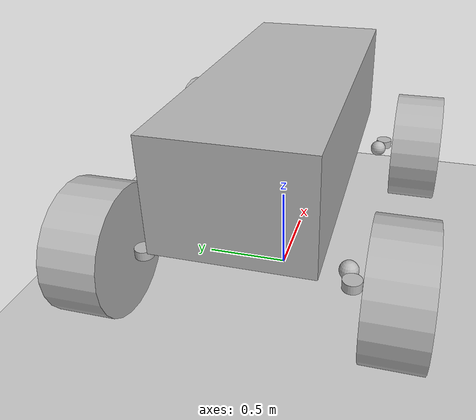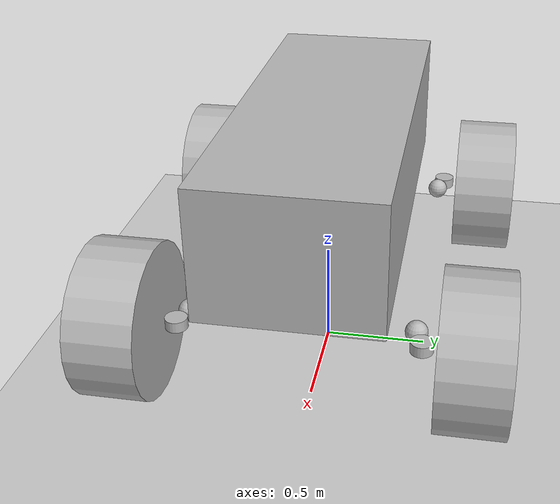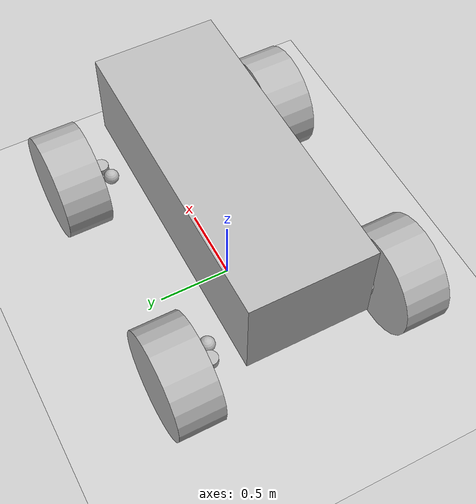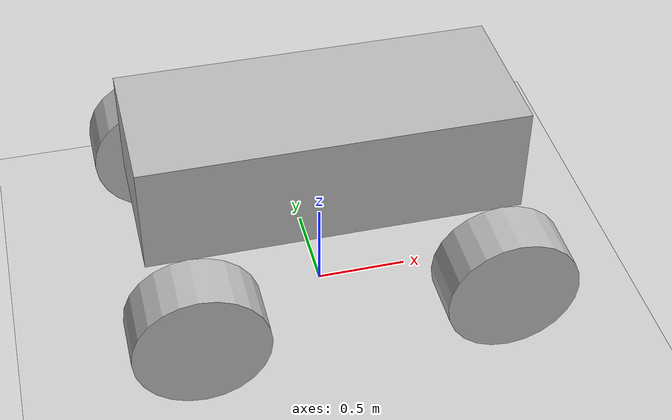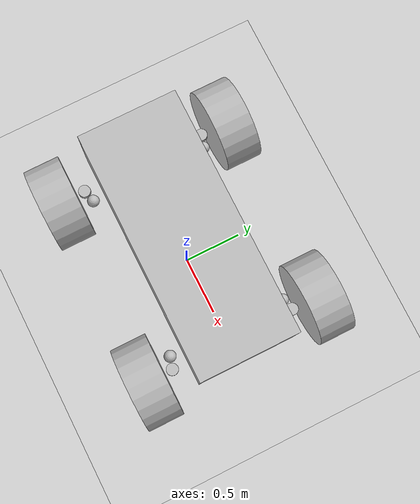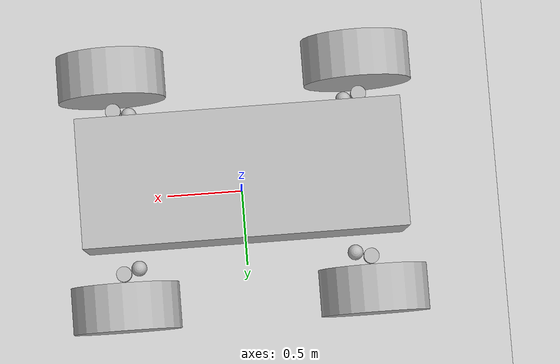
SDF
<sdf version="1.6">
  <world name="default">
    <include>
      <uri>model://ground_plane</uri>
    </include>
    <include>
      <uri>model://sun</uri>
    </include>
    <physics type="ode">
      <max_step_size>0.001</max_step_size>
      <ode>
        <solver>
          <friction_model>cone_model</friction_model>
        </solver>
      </ode>
    </physics>

    <model name="vehicle">
      <pose>0 0 0.5 0 0 0</pose>
      <link name="chassis">
        <pose>0 0 0.5 0 0 0.0</pose>
        <inertial>
          <mass>100.0</mass>
          <pose>-0.05 0 -0.1 0 0</pose>
          <inertia>
            <ixx>15.0</ixx>
            <iyy>36.33</iyy>
            <izz>45.33</izz>
            <ixy>0.0</ixy>
            <ixz>0.0</ixz>
            <iyz>0.0</iyz>
          </inertia>
        </inertial>
        <visual name="chassis_visual">
          <geometry>
            <box>
              <size>2.0 0.8 0.6</size>
            </box>
          </geometry>
        </visual>
        <collision name="chassis">
          <geometry>
            <box>
              <size>2.0 0.8 0.6</size>
            </box>
          </geometry>
        </collision>
      </link>
      <link name="front_left_wheel">
        <pose>0.8 0.75 0.05 -1.5705 0 0</pose>
        <inertial>
          <mass>11</mass>
          <inertia>
            <ixx>0.413</ixx>
            <iyy>0.413</iyy>
            <izz>0.671</izz>
            <ixy>0.0</ixy>
            <ixz>0.0</ixz>
            <iyz>0.0</iyz>
          </inertia>
        </inertial>
        <visual name="visual">
          <geometry>
            <cylinder>
              <length>0.3</length>
              <radius>0.35</radius>
            </cylinder>
          </geometry>
        </visual>
        <collision name="collision">
          <geometry>
            <cylinder>
              <length>0.3</length>
              <radius>0.35</radius>
            </cylinder>
          </geometry>
          <surface>
            <friction>
              <ode>
                <mu>1.1</mu>
                <mu2>1.1</mu2>
              </ode>
            </friction>
            <contact>
              <ode>
                <min_depth>0.001</min_depth>
                <kp>1e9</kp>
              </ode>
            </contact>
          </surface>
        </collision>
      </link>

      <link name="front_left_axle">
        <pose>0.8 0.53 0.05 0 0 0</pose>
        <inertial>
          <mass>2</mass>
          <inertia>
            <ixx>0.001666667</ixx>
            <ixy>0.0</ixy>
            <iyy>0.001666667</iyy>
            <ixz>0.0</ixz>
            <iyz>0.0</iyz>
            <izz>0.0025</izz>
          </inertia>
        </inertial>
        <visual name="visual">
          <geometry>
            <cylinder>
              <length>0.05</length>
              <radius>0.05</radius>
            </cylinder>
          </geometry>
        </visual>
        <collision name="collision">
          <geometry>
            <cylinder>
              <length>0.05</length>
              <radius>0.05</radius>
            </cylinder>
          </geometry>
        </collision>
      </link>

      <joint name="front_left_kingpin" type="revolute">
        <parent>chassis</parent>
        <child>front_left_axle</child>
        <axis>
          <xyz>0 0 1</xyz>
          <limit>
            <lower>-0.62</lower>
            <upper>0.62</upper>
          </limit>
          <dynamics>
            <damping>1</damping>
            <friction>0</friction>
          </dynamics>
        </axis>
        <physics>
          <ode>
            <cfm_damping>1</cfm_damping>
          </ode>
        </physics>
      </joint>

      <joint name="front_left_motor" type="revolute">
        <parent>front_left_axle</parent>
        <child>front_left_wheel</child>
        <axis>
          <xyz>0 0 1</xyz>
          <dynamics>
            <friction>12</friction>
          </dynamics>
          <limit>
            <effort>755</effort>
            <velocity>6.358</velocity>
          </limit>
        </axis>
      </joint>
      <link name="front_right_wheel">
        <pose>0.8 -0.75 0.05 -1.5705 0 0</pose>
        <inertial>
          <mass>11</mass>
          <inertia>
            <ixx>0.413</ixx>
            <iyy>0.413</iyy>
            <izz>0.671</izz>
            <ixy>0.0</ixy>
            <ixz>0.0</ixz>
            <iyz>0.0</iyz>
          </inertia>
        </inertial>
        <visual name="visual">
          <geometry>
            <cylinder>
              <length>0.3</length>
              <radius>0.35</radius>
            </cylinder>
          </geometry>
        </visual>
        <collision name="collision">
          <geometry>
            <cylinder>
              <length>0.3</length>
              <radius>0.35</radius>
            </cylinder>
          </geometry>
          <surface>
            <friction>
              <ode>
                <mu>1.1</mu>
                <mu2>1.1</mu2>
              </ode>
            </friction>
            <contact>
              <ode>
                <min_depth>0.001</min_depth>
                <kp>1e9</kp>
              </ode>
            </contact>
          </surface>
        </collision>
      </link>

      <link name="front_right_axle">
        <pose>0.8 -0.53 0.05 0 0 0</pose>
        <inertial>
          <mass>2</mass>
          <inertia>
            <ixx>0.001666667</ixx>
            <ixy>0.0</ixy>
            <iyy>0.001666667</iyy>
            <ixz>0.0</ixz>
            <iyz>0.0</iyz>
            <izz>0.0025</izz>
          </inertia>
        </inertial>
        <visual name="visual">
          <geometry>
            <cylinder>
              <length>0.05</length>
              <radius>0.05</radius>
            </cylinder>
          </geometry>
        </visual>
        <collision name="collision">
          <geometry>
            <cylinder>
              <length>0.05</length>
              <radius>0.05</radius>
            </cylinder>
          </geometry>
        </collision>
      </link>

      <joint name="front_right_kingpin" type="revolute">
        <parent>chassis</parent>
        <child>front_right_axle</child>
        <axis>
          <xyz>0 0 1</xyz>
          <limit>
            <lower>-0.62</lower>
            <upper>0.62</upper>
          </limit>
          <dynamics>
            <damping>1</damping>
            <friction>0</friction>
          </dynamics>
        </axis>
        <physics>
          <ode>
            <cfm_damping>1</cfm_damping>
          </ode>
        </physics>
      </joint>

      <joint name="front_right_motor" type="revolute">
        <parent>front_right_axle</parent>
        <child>front_right_wheel</child>
        <axis>
          <xyz>0 0 1</xyz>
          <dynamics>
            <friction>12</friction>
          </dynamics>
          <limit>
            <effort>755</effort>
            <velocity>6.358</velocity>
          </limit>
        </axis>
      </joint>
      <link name="rear_left_wheel">
        <pose>-0.8 0.75 0.05 -1.5705 0 0</pose>
        <inertial>
          <mass>11</mass>
          <inertia>
            <ixx>0.413</ixx>
            <iyy>0.413</iyy>
            <izz>0.671</izz>
            <ixy>0.0</ixy>
            <ixz>0.0</ixz>
            <iyz>0.0</iyz>
          </inertia>
        </inertial>
        <visual name="visual">
          <geometry>
            <cylinder>
              <length>0.3</length>
              <radius>0.35</radius>
            </cylinder>
          </geometry>
        </visual>
        <collision name="collision">
          <geometry>
            <cylinder>
              <length>0.3</length>
              <radius>0.35</radius>
            </cylinder>
          </geometry>
          <surface>
            <friction>
              <ode>
                <mu>1.1</mu>
                <mu2>1.1</mu2>
              </ode>
            </friction>
            <contact>
              <ode>
                <min_depth>0.001</min_depth>
                <kp>1e9</kp>
              </ode>
            </contact>
          </surface>
        </collision>
      </link>

      <link name="rear_left_axle">
        <pose>-0.8 0.53 0.05 0 0 0</pose>
        <inertial>
          <mass>2</mass>
          <inertia>
            <ixx>0.001666667</ixx>
            <ixy>0.0</ixy>
            <iyy>0.001666667</iyy>
            <ixz>0.0</ixz>
            <iyz>0.0</iyz>
            <izz>0.0025</izz>
          </inertia>
        </inertial>
        <visual name="visual">
          <geometry>
            <cylinder>
              <length>0.05</length>
              <radius>0.05</radius>
            </cylinder>
          </geometry>
        </visual>
        <collision name="collision">
          <geometry>
            <cylinder>
              <length>0.05</length>
              <radius>0.05</radius>
            </cylinder>
          </geometry>
        </collision>
      </link>

      <joint name="rear_left_kingpin" type="revolute">
        <parent>chassis</parent>
        <child>rear_left_axle</child>
        <axis>
          <xyz>0 0 1</xyz>
          <limit>
            <lower>-0.62</lower>
            <upper>0.62</upper>
          </limit>
          <dynamics>
            <damping>1</damping>
            <friction>0</friction>
          </dynamics>
        </axis>
        <physics>
          <ode>
            <cfm_damping>1</cfm_damping>
          </ode>
        </physics>
      </joint>

      <joint name="rear_left_motor" type="revolute">
        <parent>rear_left_axle</parent>
        <child>rear_left_wheel</child>
        <axis>
          <xyz>0 0 1</xyz>
          <dynamics>
            <friction>12</friction>
          </dynamics>
          <limit>
            <effort>755</effort>
            <velocity>6.358</velocity>
          </limit>
        </axis>
      </joint>
      <link name="rear_right_wheel">
        <pose>-0.8 -0.75 0.05 -1.5705 0 0</pose>
        <inertial>
          <mass>11</mass>
          <inertia>
            <ixx>0.413</ixx>
            <iyy>0.413</iyy>
            <izz>0.671</izz>
            <ixy>0.0</ixy>
            <ixz>0.0</ixz>
            <iyz>0.0</iyz>
          </inertia>
        </inertial>
        <visual name="visual">
          <geometry>
            <cylinder>
              <length>0.3</length>
              <radius>0.35</radius>
            </cylinder>
          </geometry>
        </visual>
        <collision name="collision">
          <geometry>
            <cylinder>
              <length>0.3</length>
              <radius>0.35</radius>
            </cylinder>
          </geometry>
          <surface>
            <friction>
              <ode>
                <mu>1.1</mu>
                <mu2>1.1</mu2>
              </ode>
            </friction>
            <contact>
              <ode>
                <min_depth>0.001</min_depth>
                <kp>1e9</kp>
              </ode>
            </contact>
          </surface>
        </collision>
      </link>

      <link name="rear_right_axle">
        <pose>-0.8 -0.53 0.05 0 0 0</pose>
        <inertial>
          <mass>2</mass>
          <inertia>
            <ixx>0.001666667</ixx>
            <ixy>0.0</ixy>
            <iyy>0.001666667</iyy>
            <ixz>0.0</ixz>
            <iyz>0.0</iyz>
            <izz>0.0025</izz>
          </inertia>
        </inertial>
        <visual name="visual">
          <geometry>
            <cylinder>
              <length>0.05</length>
              <radius>0.05</radius>
            </cylinder>
          </geometry>
        </visual>
        <collision name="collision">
          <geometry>
            <cylinder>
              <length>0.05</length>
              <radius>0.05</radius>
            </cylinder>
          </geometry>
        </collision>
      </link>

      <joint name="rear_right_kingpin" type="revolute">
        <parent>chassis</parent>
        <child>rear_right_axle</child>
        <axis>
          <xyz>0 0 1</xyz>
          <limit>
            <lower>-0.62</lower>
            <upper>0.62</upper>
          </limit>
          <dynamics>
            <damping>1</damping>
            <friction>0</friction>
          </dynamics>
        </axis>
        <physics>
          <ode>
            <cfm_damping>1</cfm_damping>
          </ode>
        </physics>
      </joint>

      <joint name="rear_right_motor" type="revolute">
        <parent>rear_right_axle</parent>
        <child>rear_right_wheel</child>
        <axis>
          <xyz>0 0 1</xyz>
          <dynamics>
            <friction>12</friction>
          </dynamics>
          <limit>
            <effort>755</effort>
            <velocity>6.358</velocity>
          </limit>
        </axis>
      </joint>
      <link name="front_steering_triangle">
        <pose>0.48 0 0.05 0 0 0</pose>
        <inertial>
          <mass>1</mass>
          <inertia>
            <ixx>0.01</ixx>
            <iyy>0.01</iyy>
            <izz>0.02</izz>
            <ixy>0.00</ixy>
            <ixz>0.00</ixz>
            <iyz>0.00</iyz>
          </inertia>
        </inertial>
        <visual name="visual">
          <geometry>
            <cylinder>
              <length>0.1</length>
              <radius>0.1</radius>
            </cylinder>
          </geometry>
        </visual>
        <collision name="collision">
          <geometry>
            <cylinder>
              <length>0.1</length>
              <radius>0.1</radius>
            </cylinder>
          </geometry>
        </collision>
      </link>

      <joint name="front_steering" type="revolute">
        <parent>chassis</parent>
        <child>front_steering_triangle</child>
        <axis>
          <xyz>0 0 1</xyz>
          <limit>
            <lower>-1.5</lower>
            <upper>1.5</upper>
            <effort>4000</effort>
            <velocity>1.24</velocity>
          </limit>
          <dynamics>
            <damping>1</damping>
            <friction>2</friction>
          </dynamics>
        </axis>
        <physics>
          <ode>
            <cfm_damping>1</cfm_damping>
          </ode>
        </physics>
      </joint>
      <link name="front_left_steering_triangle">
        <pose>0.58 0.075 0.05 0 0 0</pose>
        <inertial>
          <mass>1</mass>
          <inertia>
            <ixx>0.01</ixx>
            <iyy>0.01</iyy>
            <izz>0.02</izz>
            <ixy>0.00</ixy>
            <ixz>0.00</ixz>
            <iyz>0.00</iyz>
          </inertia>
        </inertial>
        <visual name="visual">
          <geometry>
            <sphere>
              <radius>0.05</radius>
            </sphere>
          </geometry>
        </visual>
        <collision name="collision">
          <geometry>
            <sphere>
              <radius>0.05</radius>
            </sphere>
          </geometry>
        </collision>
      </link>

      <link name="front_left_axle_rod_connector">
        <pose>0.7000000000000001 0.5 0.05 0 0 0</pose>
        <inertial>
          <mass>1</mass>
          <inertia>
            <ixx>0.01</ixx>
            <iyy>0.01</iyy>
            <izz>0.02</izz>
            <ixy>0.00</ixy>
            <ixz>0.00</ixz>
            <iyz>0.00</iyz>
          </inertia>
        </inertial>
        <visual name="visual">
          <geometry>
            <sphere>
              <radius>0.05</radius>
            </sphere>
          </geometry>
        </visual>
        <collision name="collision">
          <geometry>
            <sphere>
              <radius>0.05</radius>
            </sphere>
          </geometry>
        </collision>
      </link>

      <joint name="front_left_steering_connector" type="revolute">
        <parent>front_steering_triangle</parent>
        <child>front_left_steering_triangle</child>
        <axis>
          <xyz>0 0 1</xyz>
        </axis>
      </joint>

      <joint name="front_left_steering_rod" type="revolute">
        <parent>front_left_steering_triangle</parent>
        <child>front_left_axle_rod_connector</child>
        <axis>
          <xyz>0 0 1</xyz>
        </axis>
      </joint>

      <joint name="front_left_axle_connection" type="fixed">
        <parent>front_left_axle_rod_connector</parent>
        <child>front_left_axle</child>
      </joint>
      <link name="front_right_steering_triangle">
        <pose>0.58 -0.075 0.05 0 0 0</pose>
        <inertial>
          <mass>1</mass>
          <inertia>
            <ixx>0.01</ixx>
            <iyy>0.01</iyy>
            <izz>0.02</izz>
            <ixy>0.00</ixy>
            <ixz>0.00</ixz>
            <iyz>0.00</iyz>
          </inertia>
        </inertial>
        <visual name="visual">
          <geometry>
            <sphere>
              <radius>0.05</radius>
            </sphere>
          </geometry>
        </visual>
        <collision name="collision">
          <geometry>
            <sphere>
              <radius>0.05</radius>
            </sphere>
          </geometry>
        </collision>
      </link>

      <link name="front_right_axle_rod_connector">
        <pose>0.7000000000000001 -0.5 0.05 0 0 0</pose>
        <inertial>
          <mass>1</mass>
          <inertia>
            <ixx>0.01</ixx>
            <iyy>0.01</iyy>
            <izz>0.02</izz>
            <ixy>0.00</ixy>
            <ixz>0.00</ixz>
            <iyz>0.00</iyz>
          </inertia>
        </inertial>
        <visual name="visual">
          <geometry>
            <sphere>
              <radius>0.05</radius>
            </sphere>
          </geometry>
        </visual>
        <collision name="collision">
          <geometry>
            <sphere>
              <radius>0.05</radius>
            </sphere>
          </geometry>
        </collision>
      </link>

      <joint name="front_right_steering_connector" type="revolute">
        <parent>front_steering_triangle</parent>
        <child>front_right_steering_triangle</child>
        <axis>
          <xyz>0 0 1</xyz>
        </axis>
      </joint>

      <joint name="front_right_steering_rod" type="revolute">
        <parent>front_right_steering_triangle</parent>
        <child>front_right_axle_rod_connector</child>
        <axis>
          <xyz>0 0 1</xyz>
        </axis>
      </joint>

      <joint name="front_right_axle_connection" type="fixed">
        <parent>front_right_axle_rod_connector</parent>
        <child>front_right_axle</child>
      </joint>
      <link name="rear_steering_triangle">
        <pose>-0.48 0 0.05 0 0 0</pose>
        <inertial>
          <mass>1</mass>
          <inertia>
            <ixx>0.01</ixx>
            <iyy>0.01</iyy>
            <izz>0.02</izz>
            <ixy>0.00</ixy>
            <ixz>0.00</ixz>
            <iyz>0.00</iyz>
          </inertia>
        </inertial>
        <visual name="visual">
          <geometry>
            <cylinder>
              <length>0.1</length>
              <radius>0.1</radius>
            </cylinder>
          </geometry>
        </visual>
        <collision name="collision">
          <geometry>
            <cylinder>
              <length>0.1</length>
              <radius>0.1</radius>
            </cylinder>
          </geometry>
        </collision>
      </link>

      <joint name="rear_steering" type="revolute">
        <parent>chassis</parent>
        <child>rear_steering_triangle</child>
        <axis>
          <xyz>0 0 1</xyz>
          <limit>
            <lower>-1.5</lower>
            <upper>1.5</upper>
            <effort>4000</effort>
            <velocity>1.24</velocity>
          </limit>
          <dynamics>
            <damping>1</damping>
            <friction>2</friction>
          </dynamics>
        </axis>
        <physics>
          <ode>
            <cfm_damping>1</cfm_damping>
          </ode>
        </physics>
      </joint>
      <link name="rear_left_steering_triangle">
        <pose>-0.58 0.075 0.05 0 0 0</pose>
        <inertial>
          <mass>1</mass>
          <inertia>
            <ixx>0.01</ixx>
            <iyy>0.01</iyy>
            <izz>0.02</izz>
            <ixy>0.00</ixy>
            <ixz>0.00</ixz>
            <iyz>0.00</iyz>
          </inertia>
        </inertial>
        <visual name="visual">
          <geometry>
            <sphere>
              <radius>0.05</radius>
            </sphere>
          </geometry>
        </visual>
        <collision name="collision">
          <geometry>
            <sphere>
              <radius>0.05</radius>
            </sphere>
          </geometry>
        </collision>
      </link>

      <link name="rear_left_axle_rod_connector">
        <pose>-0.7000000000000001 0.5 0.05 0 0 0</pose>
        <inertial>
          <mass>1</mass>
          <inertia>
            <ixx>0.01</ixx>
            <iyy>0.01</iyy>
            <izz>0.02</izz>
            <ixy>0.00</ixy>
            <ixz>0.00</ixz>
            <iyz>0.00</iyz>
          </inertia>
        </inertial>
        <visual name="visual">
          <geometry>
            <sphere>
              <radius>0.05</radius>
            </sphere>
          </geometry>
        </visual>
        <collision name="collision">
          <geometry>
            <sphere>
              <radius>0.05</radius>
            </sphere>
          </geometry>
        </collision>
      </link>

      <joint name="rear_left_steering_connector" type="revolute">
        <parent>rear_steering_triangle</parent>
        <child>rear_left_steering_triangle</child>
        <axis>
          <xyz>0 0 1</xyz>
        </axis>
      </joint>

      <joint name="rear_left_steering_rod" type="revolute">
        <parent>rear_left_steering_triangle</parent>
        <child>rear_left_axle_rod_connector</child>
        <axis>
          <xyz>0 0 1</xyz>
        </axis>
      </joint>

      <joint name="rear_left_axle_connection" type="fixed">
        <parent>rear_left_axle_rod_connector</parent>
        <child>rear_left_axle</child>
      </joint>
      <link name="rear_right_steering_triangle">
        <pose>-0.58 -0.075 0.05 0 0 0</pose>
        <inertial>
          <mass>1</mass>
          <inertia>
            <ixx>0.01</ixx>
            <iyy>0.01</iyy>
            <izz>0.02</izz>
            <ixy>0.00</ixy>
            <ixz>0.00</ixz>
            <iyz>0.00</iyz>
          </inertia>
        </inertial>
        <visual name="visual">
          <geometry>
            <sphere>
              <radius>0.05</radius>
            </sphere>
          </geometry>
        </visual>
        <collision name="collision">
          <geometry>
            <sphere>
              <radius>0.05</radius>
            </sphere>
          </geometry>
        </collision>
      </link>

      <link name="rear_right_axle_rod_connector">
        <pose>-0.7000000000000001 -0.5 0.05 0 0 0</pose>
        <inertial>
          <mass>1</mass>
          <inertia>
            <ixx>0.01</ixx>
            <iyy>0.01</iyy>
            <izz>0.02</izz>
            <ixy>0.00</ixy>
            <ixz>0.00</ixz>
            <iyz>0.00</iyz>
          </inertia>
        </inertial>
        <visual name="visual">
          <geometry>
            <sphere>
              <radius>0.05</radius>
            </sphere>
          </geometry>
        </visual>
        <collision name="collision">
          <geometry>
            <sphere>
              <radius>0.05</radius>
            </sphere>
          </geometry>
        </collision>
      </link>

      <joint name="rear_right_steering_connector" type="revolute">
        <parent>rear_steering_triangle</parent>
        <child>rear_right_steering_triangle</child>
        <axis>
          <xyz>0 0 1</xyz>
        </axis>
      </joint>

      <joint name="rear_right_steering_rod" type="revolute">
        <parent>rear_right_steering_triangle</parent>
        <child>rear_right_axle_rod_connector</child>
        <axis>
          <xyz>0 0 1</xyz>
        </axis>
      </joint>

      <joint name="rear_right_axle_connection" type="fixed">
        <parent>rear_right_axle_rod_connector</parent>
        <child>rear_right_axle</child>
      </joint>
      <plugin name="gazebo_ros_4ws" filename="libgazebo_ros_four_wheel_steering.so">
        <ros>
          <namespace>test</namespace>
        </ros>
        <front_right_wheel_pid_gain>400 0 1</front_right_wheel_pid_gain>
        <front_left_wheel_pid_gain>400 0 1</front_left_wheel_pid_gain>
        <rear_right_wheel_pid_gain>400 0 1</rear_right_wheel_pid_gain>
        <rear_left_wheel_pid_gain>400 0 1</rear_left_wheel_pid_gain>
        <front_steering_pid_gain>2000 0 2</front_steering_pid_gain>
        <rear_steering_pid_gain>2000 0 2</rear_steering_pid_gain>
      </plugin>
    </model>
  </world>
</sdf>
